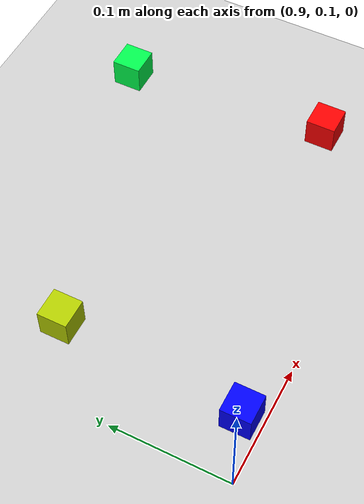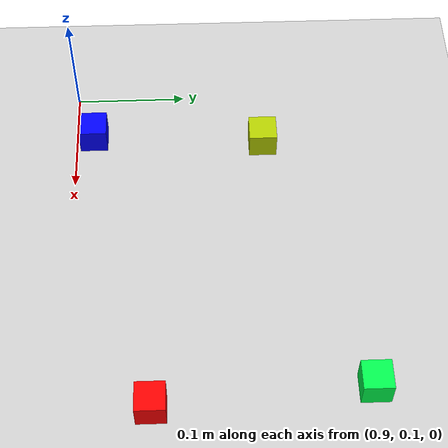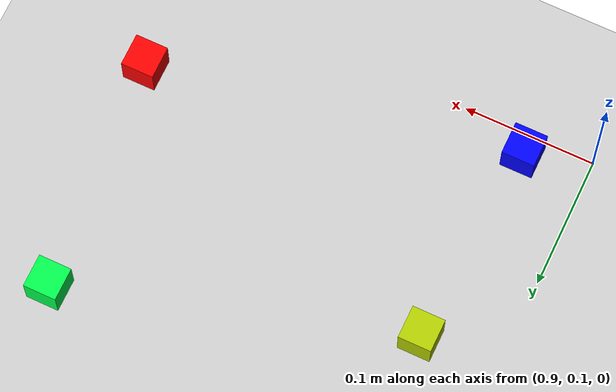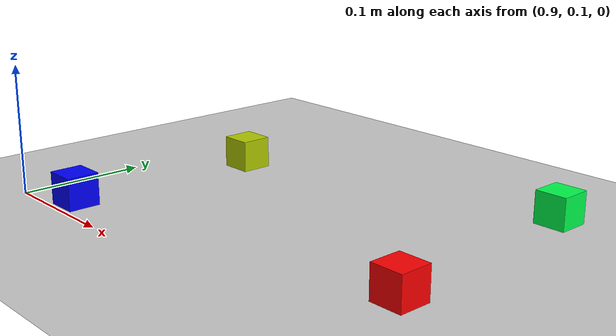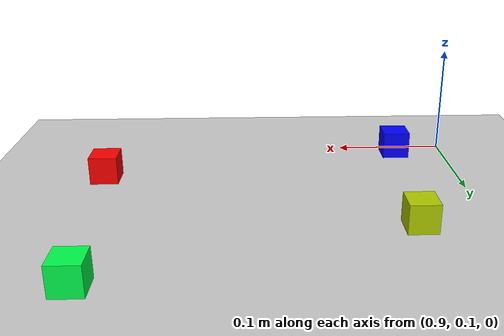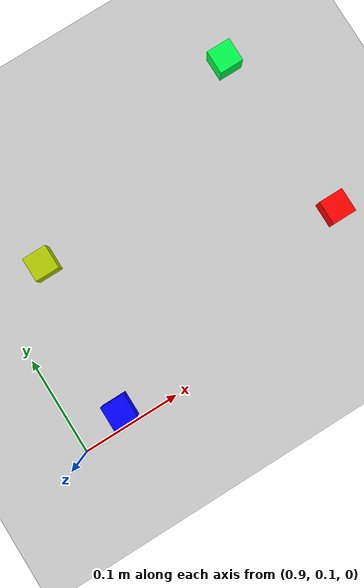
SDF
<sdf version="1.7">
 <world name="default">
  <model name="ground_plane">
   <static>1</static>
   <link name="link">
    <collision name="collision">
     <geometry><plane><normal>0 0 1</normal><size>100 100</size></plane></geometry>
     <surface>
      <contact><collide_bitmask>65535</collide_bitmask></contact>
      <friction><ode><mu>100</mu><mu2>50</mu2></ode></friction>
     </surface>
    </collision>
    <visual name="visual">
     <cast_shadows>0</cast_shadows>
     <geometry><plane><normal>0 0 1</normal><size>100 100</size></plane></geometry>
     <material>
      <script><uri>file://media/materials/scripts/gazebo.material</uri><name>Gazebo/Grey</name></script>
     </material>
    </visual>
   </link>
  </model>
  <model name="red_unit_box_1">
   <link name="link">
    <inertial>
     <mass>1</mass>
     <inertia>
      <ixx>0.166667</ixx>
      <ixy>0</ixy>
      <ixz>0</ixz>
      <iyy>0.166667</iyy>
      <iyz>0</iyz>
      <izz>0.166667</izz>
     </inertia>
    </inertial>
    <visual name="visual">
     <geometry><box><size>0.025 0.025 0.025</size></box></geometry>
     <material>
      <script><name>Gazebo/Grey</name><uri>file://media/materials/scripts/gazebo.material</uri></script>
      <shader type="pixel"><normal_map>__default__</normal_map></shader>
      <ambient>0.7 0 0 1</ambient>
      <diffuse>1 0 0 1</diffuse>
      <specular>0.01 0 0 1</specular>
      <emissive>0 0 0 1</emissive>
     </material>
    </visual>
    <collision name="collision">
     <geometry><box><size>0.025 0.025 0.025</size></box></geometry>
     <surface>
      <friction>
       <ode><mu>1</mu><mu2>1</mu2><fdir1>0 0 0</fdir1><slip1>0</slip1><slip2>0</slip2></ode>
       <torsional>
        <coefficient>1</coefficient>
        <patch_radius>0</patch_radius>
        <surface_radius>0</surface_radius>
        <use_patch_radius>1</use_patch_radius>
        <ode><slip>0</slip></ode>
       </torsional>
      </friction>
      <bounce><restitution_coefficient>0</restitution_coefficient><threshold>1e+06</threshold></bounce>
      <contact>
       <collide_without_contact>0</collide_without_contact>
       <collide_without_contact_bitmask>1</collide_without_contact_bitmask>
       <collide_bitmask>1</collide_bitmask>
       <ode>
        <soft_cfm>0</soft_cfm>
        <soft_erp>0.2</soft_erp>
        <kp>1e+13</kp>
        <kd>1</kd>
        <max_vel>0.01</max_vel>
        <min_depth>0</min_depth>
       </ode>
       <bullet>
        <split_impulse>1</split_impulse>
        <split_impulse_penetration_threshold>-0.01</split_impulse_penetration_threshold>
        <soft_cfm>0</soft_cfm>
        <soft_erp>0.2</soft_erp>
        <kp>1e+13</kp>
        <kd>1</kd>
       </bullet>
      </contact>
     </surface>
    </collision>
   </link>
   <static>0</static>
   <pose>1.22347 0.170256 0.0125 -1e-05 1e-06 -1e-06</pose>
  </model>
  <model name="yellow_unit_box_1">
   <link name="link">
    <inertial>
     <mass>1</mass>
     <inertia>
      <ixx>0.166667</ixx>
      <ixy>0</ixy>
      <ixz>0</ixz>
      <iyy>0.166667</iyy>
      <iyz>0</iyz>
      <izz>0.166667</izz>
     </inertia>
    </inertial>
    <visual name="visual">
     <geometry><box><size>0.025 0.025 0.025</size></box></geometry>
     <material>
      <script><name>Gazebo/Grey</name><uri>file://media/materials/scripts/gazebo.material</uri></script>
      <shader type="pixel"><normal_map>__default__</normal_map></shader>
      <ambient>0.8 0.8 0 1</ambient>
      <diffuse>0.7 0.8 0 1</diffuse>
      <specular>0.01 0 0 1</specular>
      <emissive>0 0 0 1</emissive>
     </material>
    </visual>
    <collision name="collision">
     <geometry><box><size>0.025 0.025 0.025</size></box></geometry>
     <surface>
      <friction>
       <ode><mu>1</mu><mu2>1</mu2><fdir1>0 0 0</fdir1><slip1>0</slip1><slip2>0</slip2></ode>
       <torsional>
        <coefficient>1</coefficient>
        <patch_radius>0</patch_radius>
        <surface_radius>0</surface_radius>
        <use_patch_radius>1</use_patch_radius>
        <ode><slip>0</slip></ode>
       </torsional>
      </friction>
      <bounce><restitution_coefficient>0</restitution_coefficient><threshold>1e+06</threshold></bounce>
      <contact>
       <collide_without_contact>0</collide_without_contact>
       <collide_without_contact_bitmask>1</collide_without_contact_bitmask>
       <collide_bitmask>1</collide_bitmask>
       <ode>
        <soft_cfm>0</soft_cfm>
        <soft_erp>0.2</soft_erp>
        <kp>1e+13</kp>
        <kd>1</kd>
        <max_vel>0.01</max_vel>
        <min_depth>0</min_depth>
       </ode>
       <bullet>
        <split_impulse>1</split_impulse>
        <split_impulse_penetration_threshold>-0.01</split_impulse_penetration_threshold>
        <soft_cfm>0</soft_cfm>
        <soft_erp>0.2</soft_erp>
        <kp>1e+13</kp>
        <kd>1</kd>
       </bullet>
      </contact>
     </surface>
    </collision>
   </link>
   <static>0</static>
   <pose>0.95806 0.272634 0.012501 6e-06 6.1e-05 0</pose>
  </model>
  <model name="green_unit_box_2">
   <link name="link">
    <inertial>
     <mass>1</mass>
     <inertia>
      <ixx>0.166667</ixx>
      <ixy>0</ixy>
      <ixz>0</ixz>
      <iyy>0.166667</iyy>
      <iyz>0</iyz>
      <izz>0.166667</izz>
     </inertia>
    </inertial>
    <visual name="visual">
     <geometry><box><size>0.025 0.025 0.025</size></box></geometry>
     <material>
      <script><name>Gazebo/Grey</name><uri>file://media/materials/scripts/gazebo.material</uri></script>
      <shader type="pixel"><normal_map>__default__</normal_map></shader>
      <ambient>0 1 0.3 1</ambient>
      <diffuse>0 1 0.3 1</diffuse>
      <specular>0.01 0 0 1</specular>
      <emissive>0 0 0 1</emissive>
     </material>
    </visual>
    <collision name="collision">
     <geometry><box><size>0.025 0.025 0.025</size></box></geometry>
     <surface>
      <friction>
       <ode><mu>1</mu><mu2>1</mu2><fdir1>0 0 0</fdir1><slip1>0</slip1><slip2>0</slip2></ode>
       <torsional>
        <coefficient>1</coefficient>
        <patch_radius>0</patch_radius>
        <surface_radius>0</surface_radius>
        <use_patch_radius>1</use_patch_radius>
        <ode><slip>0</slip></ode>
       </torsional>
      </friction>
      <bounce><restitution_coefficient>0</restitution_coefficient><threshold>1e+06</threshold></bounce>
      <contact>
       <collide_without_contact>0</collide_without_contact>
       <collide_without_contact_bitmask>1</collide_without_contact_bitmask>
       <collide_bitmask>1</collide_bitmask>
       <ode>
        <soft_cfm>0</soft_cfm>
        <soft_erp>0.2</soft_erp>
        <kp>1e+13</kp>
        <kd>1</kd>
        <max_vel>0.01</max_vel>
        <min_depth>0</min_depth>
       </ode>
       <bullet>
        <split_impulse>1</split_impulse>
        <split_impulse_penetration_threshold>-0.01</split_impulse_penetration_threshold>
        <soft_cfm>0</soft_cfm>
        <soft_erp>0.2</soft_erp>
        <kp>1e+13</kp>
        <kd>1</kd>
       </bullet>
      </contact>
     </surface>
    </collision>
   </link>
   <static>0</static>
   <pose>1.21069 0.349567 0.0125 1.1e-05 5e-06 1e-06</pose>
  </model>
  <model name="blue_unit_box_1">
   <link name="link">
    <inertial>
     <mass>1</mass>
     <inertia>
      <ixx>0.166667</ixx>
      <ixy>0</ixy>
      <ixz>0</ixz>
      <iyy>0.166667</iyy>
      <iyz>0</iyz>
      <izz>0.166667</izz>
     </inertia>
    </inertial>
    <visual name="visual">
     <geometry><box><size>0.025 0.025 0.025</size></box></geometry>
     <material>
      <script><name>Gazebo/Grey</name><uri>file://media/materials/scripts/gazebo.material</uri></script>
      <shader type="pixel"><normal_map>__default__</normal_map></shader>
      <ambient>0 0 1 1</ambient>
      <diffuse>0 0 1 1</diffuse>
      <specular>0.01 0 0 1</specular>
      <emissive>0 0 0 1</emissive>
     </material>
    </visual>
    <collision name="collision">
     <geometry><box><size>0.025 0.025 0.025</size></box></geometry>
     <surface>
      <friction>
       <ode><mu>1</mu><mu2>1</mu2><fdir1>0 0 0</fdir1><slip1>0</slip1><slip2>0</slip2></ode>
       <torsional>
        <coefficient>1</coefficient>
        <patch_radius>0</patch_radius>
        <surface_radius>0</surface_radius>
        <use_patch_radius>1</use_patch_radius>
        <ode><slip>0</slip></ode>
       </torsional>
      </friction>
      <bounce><restitution_coefficient>0</restitution_coefficient><threshold>1e+06</threshold></bounce>
      <contact>
       <collide_without_contact>0</collide_without_contact>
       <collide_without_contact_bitmask>1</collide_without_contact_bitmask>
       <collide_bitmask>1</collide_bitmask>
       <ode>
        <soft_cfm>0</soft_cfm>
        <soft_erp>0.2</soft_erp>
        <kp>1e+13</kp>
        <kd>1</kd>
        <max_vel>0.01</max_vel>
        <min_depth>0</min_depth>
       </ode>
       <bullet>
        <split_impulse>1</split_impulse>
        <split_impulse_penetration_threshold>-0.01</split_impulse_penetration_threshold>
        <soft_cfm>0</soft_cfm>
        <soft_erp>0.2</soft_erp>
        <kp>1e+13</kp>
        <kd>1</kd>
       </bullet>
      </contact>
     </surface>
    </collision>
   </link>
   <static>0</static>
   <pose>0.94823 0.116417 0.0125 -3.2e-05 -2e-06 0</pose>
  </model>
 </world>
</sdf>
